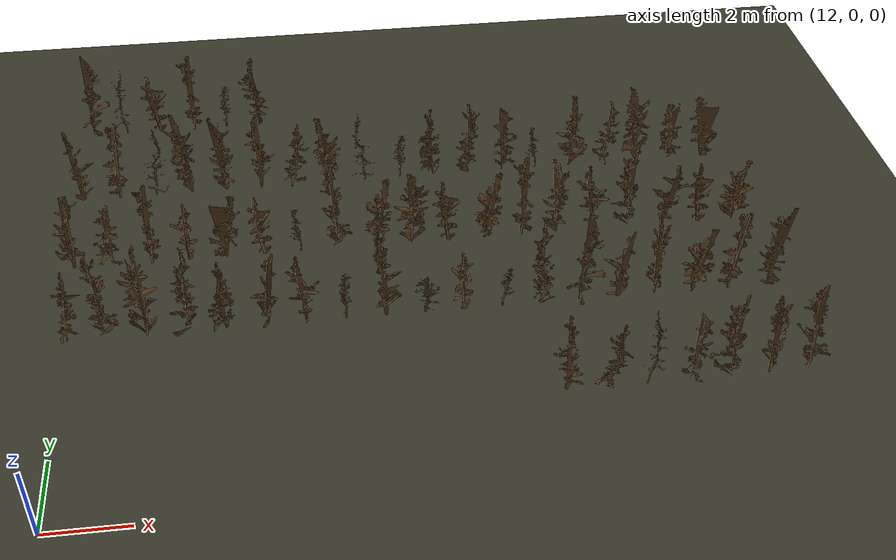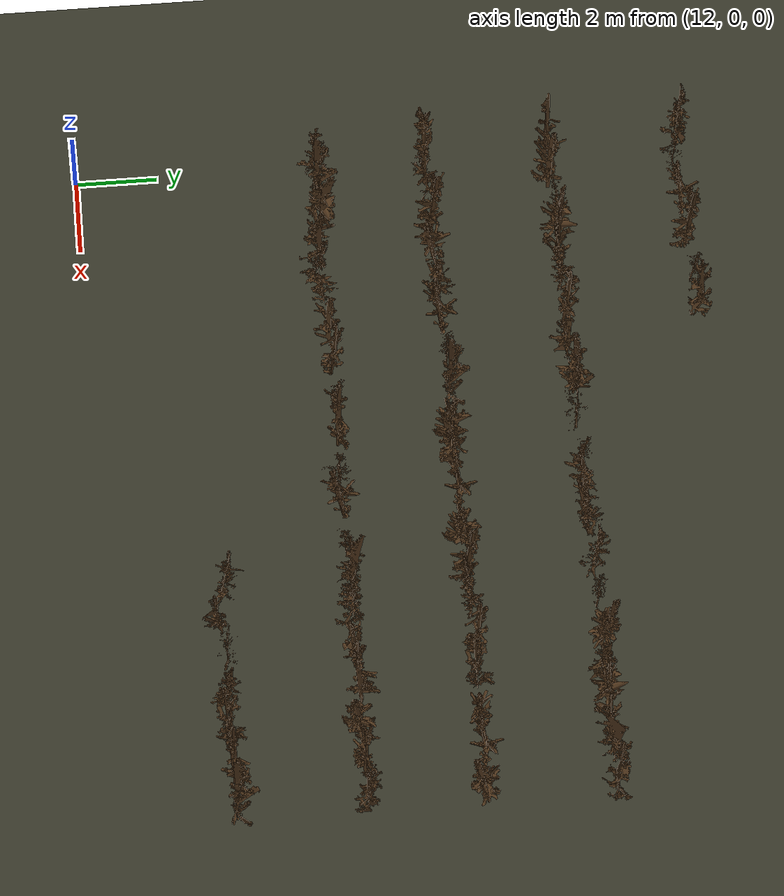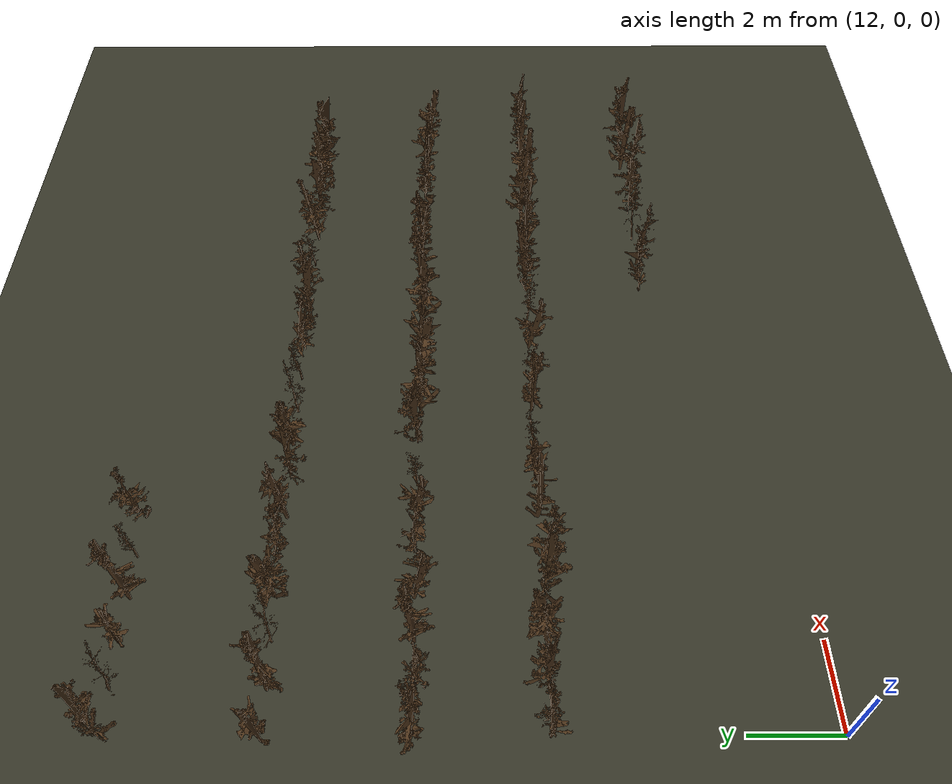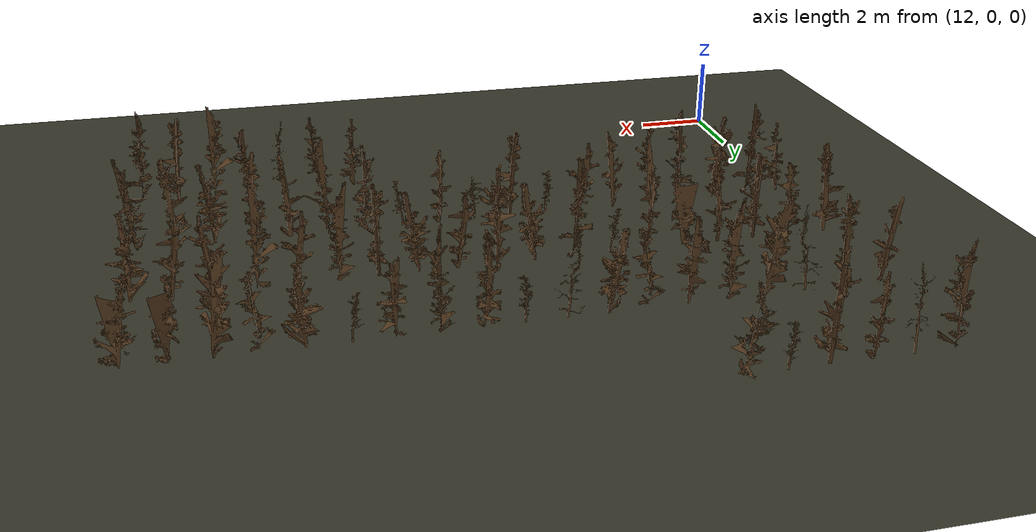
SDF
<sdf version="1.9">
 <world name="orchard_dormant_world">
  <model name="ground_plane">
   <static>true</static>
   <link name="link">
    <collision name="collision">
     <geometry><plane><normal>0 0 1</normal><size>500 500</size></plane></geometry>
    </collision>
    <visual name="visual">
     <geometry><plane><normal>0 0 1</normal><size>500 500</size></plane></geometry>
     <material><ambient>0.2 0.2 0.15 1</ambient><diffuse>0.2 0.2 0.15 1</diffuse></material>
    </visual>
   </link>
  </model>
  <model name="tree122">
   <static>true</static>
   <pose>17.000 14.900 -0.1 0 0 4.695</pose>
   <link name="link">
    <collision name="collision">
     <geometry>
      <mesh>
       <uri>file:///home/administrator/ros2/orchard_navigation_rl_ws/src/orchard_worlds/models/orchard_model/tree10_collision.stl</uri>
      </mesh>
     </geometry>
    </collision>
    <visual name="visual">
     <geometry>
      <mesh>
       <uri>file:///home/administrator/ros2/orchard_navigation_rl_ws/src/orchard_worlds/models/orchard_model/tree10.stl</uri>
      </mesh>
     </geometry>
     <material><ambient>0.3 0.2 0.1 1</ambient><diffuse>0.3 0.2 0.1 1</diffuse></material>
    </visual>
   </link>
  </model>
  <model name="tree123">
   <static>true</static>
   <pose>16.000 14.900 -0.1 0 0 4.043</pose>
   <link name="link">
    <collision name="collision">
     <geometry>
      <mesh>
       <uri>file:///home/administrator/ros2/orchard_navigation_rl_ws/src/orchard_worlds/models/orchard_model/tree4_collision.stl</uri>
      </mesh>
     </geometry>
    </collision>
    <visual name="visual">
     <geometry>
      <mesh>
       <uri>file:///home/administrator/ros2/orchard_navigation_rl_ws/src/orchard_worlds/models/orchard_model/tree4.stl</uri>
      </mesh>
     </geometry>
     <material><ambient>0.3 0.2 0.1 1</ambient><diffuse>0.3 0.2 0.1 1</diffuse></material>
    </visual>
   </link>
  </model>
  <model name="tree124">
   <static>true</static>
   <pose>15.000 14.900 -0.1 0 0 3.682</pose>
   <link name="link">
    <collision name="collision">
     <geometry>
      <mesh>
       <uri>file:///home/administrator/ros2/orchard_navigation_rl_ws/src/orchard_worlds/models/orchard_model/tree6_collision.stl</uri>
      </mesh>
     </geometry>
    </collision>
    <visual name="visual">
     <geometry>
      <mesh>
       <uri>file:///home/administrator/ros2/orchard_navigation_rl_ws/src/orchard_worlds/models/orchard_model/tree6.stl</uri>
      </mesh>
     </geometry>
     <material><ambient>0.3 0.2 0.1 1</ambient><diffuse>0.3 0.2 0.1 1</diffuse></material>
    </visual>
   </link>
  </model>
  <model name="tree125">
   <static>true</static>
   <pose>14.000 14.900 -0.1 0 0 6.033</pose>
   <link name="link">
    <collision name="collision">
     <geometry>
      <mesh>
       <uri>file:///home/administrator/ros2/orchard_navigation_rl_ws/src/orchard_worlds/models/orchard_model/tree8_collision.stl</uri>
      </mesh>
     </geometry>
    </collision>
    <visual name="visual">
     <geometry>
      <mesh>
       <uri>file:///home/administrator/ros2/orchard_navigation_rl_ws/src/orchard_worlds/models/orchard_model/tree8.stl</uri>
      </mesh>
     </geometry>
     <material><ambient>0.3 0.2 0.1 1</ambient><diffuse>0.3 0.2 0.1 1</diffuse></material>
    </visual>
   </link>
  </model>
  <model name="tree126">
   <static>true</static>
   <pose>13.000 14.900 -0.1 0 0 1.878</pose>
   <link name="link">
    <collision name="collision">
     <geometry>
      <mesh>
       <uri>file:///home/administrator/ros2/orchard_navigation_rl_ws/src/orchard_worlds/models/orchard_model/tree16_collision.stl</uri>
      </mesh>
     </geometry>
    </collision>
    <visual name="visual">
     <geometry>
      <mesh>
       <uri>file:///home/administrator/ros2/orchard_navigation_rl_ws/src/orchard_worlds/models/orchard_model/tree16.stl</uri>
      </mesh>
     </geometry>
     <material><ambient>0.3 0.2 0.1 1</ambient><diffuse>0.3 0.2 0.1 1</diffuse></material>
    </visual>
   </link>
  </model>
  <model name="tree127">
   <static>true</static>
   <pose>12.000 14.900 -0.1 0 0 2.507</pose>
   <link name="link">
    <collision name="collision">
     <geometry>
      <mesh>
       <uri>file:///home/administrator/ros2/orchard_navigation_rl_ws/src/orchard_worlds/models/orchard_model/tree3_collision.stl</uri>
      </mesh>
     </geometry>
    </collision>
    <visual name="visual">
     <geometry>
      <mesh>
       <uri>file:///home/administrator/ros2/orchard_navigation_rl_ws/src/orchard_worlds/models/orchard_model/tree3.stl</uri>
      </mesh>
     </geometry>
     <material><ambient>0.3 0.2 0.1 1</ambient><diffuse>0.3 0.2 0.1 1</diffuse></material>
    </visual>
   </link>
  </model>
  <model name="tree143">
   <static>true</static>
   <pose>30.000 11.700 -0.1 0 0 5.397</pose>
   <link name="link">
    <collision name="collision">
     <geometry>
      <mesh>
       <uri>file:///home/administrator/ros2/orchard_navigation_rl_ws/src/orchard_worlds/models/orchard_model/tree11_collision.stl</uri>
      </mesh>
     </geometry>
    </collision>
    <visual name="visual">
     <geometry>
      <mesh>
       <uri>file:///home/administrator/ros2/orchard_navigation_rl_ws/src/orchard_worlds/models/orchard_model/tree11.stl</uri>
      </mesh>
     </geometry>
     <material><ambient>0.3 0.2 0.1 1</ambient><diffuse>0.3 0.2 0.1 1</diffuse></material>
    </visual>
   </link>
  </model>
  <model name="tree144">
   <static>true</static>
   <pose>29.000 11.700 -0.1 0 0 0.231</pose>
   <link name="link">
    <collision name="collision">
     <geometry>
      <mesh>
       <uri>file:///home/administrator/ros2/orchard_navigation_rl_ws/src/orchard_worlds/models/orchard_model/tree11_collision.stl</uri>
      </mesh>
     </geometry>
    </collision>
    <visual name="visual">
     <geometry>
      <mesh>
       <uri>file:///home/administrator/ros2/orchard_navigation_rl_ws/src/orchard_worlds/models/orchard_model/tree11.stl</uri>
      </mesh>
     </geometry>
     <material><ambient>0.3 0.2 0.1 1</ambient><diffuse>0.3 0.2 0.1 1</diffuse></material>
    </visual>
   </link>
  </model>
  <model name="tree145">
   <static>true</static>
   <pose>28.000 11.700 -0.1 0 0 5.846</pose>
   <link name="link">
    <collision name="collision">
     <geometry>
      <mesh>
       <uri>file:///home/administrator/ros2/orchard_navigation_rl_ws/src/orchard_worlds/models/orchard_model/tree7_collision.stl</uri>
      </mesh>
     </geometry>
    </collision>
    <visual name="visual">
     <geometry>
      <mesh>
       <uri>file:///home/administrator/ros2/orchard_navigation_rl_ws/src/orchard_worlds/models/orchard_model/tree7.stl</uri>
      </mesh>
     </geometry>
     <material><ambient>0.3 0.2 0.1 1</ambient><diffuse>0.3 0.2 0.1 1</diffuse></material>
    </visual>
   </link>
  </model>
  <model name="tree146">
   <static>true</static>
   <pose>27.000 11.700 -0.1 0 0 1.678</pose>
   <link name="link">
    <collision name="collision">
     <geometry>
      <mesh>
       <uri>file:///home/administrator/ros2/orchard_navigation_rl_ws/src/orchard_worlds/models/orchard_model/tree1_collision.stl</uri>
      </mesh>
     </geometry>
    </collision>
    <visual name="visual">
     <geometry>
      <mesh>
       <uri>file:///home/administrator/ros2/orchard_navigation_rl_ws/src/orchard_worlds/models/orchard_model/tree1.stl</uri>
      </mesh>
     </geometry>
     <material><ambient>0.3 0.2 0.1 1</ambient><diffuse>0.3 0.2 0.1 1</diffuse></material>
    </visual>
   </link>
  </model>
  <model name="tree147">
   <static>true</static>
   <pose>26.000 11.700 -0.1 0 0 3.928</pose>
   <link name="link">
    <collision name="collision">
     <geometry>
      <mesh>
       <uri>file:///home/administrator/ros2/orchard_navigation_rl_ws/src/orchard_worlds/models/orchard_model/tree12_collision.stl</uri>
      </mesh>
     </geometry>
    </collision>
    <visual name="visual">
     <geometry>
      <mesh>
       <uri>file:///home/administrator/ros2/orchard_navigation_rl_ws/src/orchard_worlds/models/orchard_model/tree12.stl</uri>
      </mesh>
     </geometry>
     <material><ambient>0.3 0.2 0.1 1</ambient><diffuse>0.3 0.2 0.1 1</diffuse></material>
    </visual>
   </link>
  </model>
  <model name="tree148">
   <static>true</static>
   <pose>25.000 11.700 -0.1 0 0 5.270</pose>
   <link name="link">
    <collision name="collision">
     <geometry>
      <mesh>
       <uri>file:///home/administrator/ros2/orchard_navigation_rl_ws/src/orchard_worlds/models/orchard_model/tree4_collision.stl</uri>
      </mesh>
     </geometry>
    </collision>
    <visual name="visual">
     <geometry>
      <mesh>
       <uri>file:///home/administrator/ros2/orchard_navigation_rl_ws/src/orchard_worlds/models/orchard_model/tree4.stl</uri>
      </mesh>
     </geometry>
     <material><ambient>0.3 0.2 0.1 1</ambient><diffuse>0.3 0.2 0.1 1</diffuse></material>
    </visual>
   </link>
  </model>
  <model name="tree149">
   <static>true</static>
   <pose>24.000 11.700 -0.1 0 0 3.241</pose>
   <link name="link">
    <collision name="collision">
     <geometry>
      <mesh>
       <uri>file:///home/administrator/ros2/orchard_navigation_rl_ws/src/orchard_worlds/models/orchard_model/tree1_collision.stl</uri>
      </mesh>
     </geometry>
    </collision>
    <visual name="visual">
     <geometry>
      <mesh>
       <uri>file:///home/administrator/ros2/orchard_navigation_rl_ws/src/orchard_worlds/models/orchard_model/tree1.stl</uri>
      </mesh>
     </geometry>
     <material><ambient>0.3 0.2 0.1 1</ambient><diffuse>0.3 0.2 0.1 1</diffuse></material>
    </visual>
   </link>
  </model>
  <model name="tree150">
   <static>true</static>
   <pose>23.000 11.700 -0.1 0 0 0.190</pose>
   <link name="link">
    <collision name="collision">
     <geometry>
      <mesh>
       <uri>file:///home/administrator/ros2/orchard_navigation_rl_ws/src/orchard_worlds/models/orchard_model/tree5_collision.stl</uri>
      </mesh>
     </geometry>
    </collision>
    <visual name="visual">
     <geometry>
      <mesh>
       <uri>file:///home/administrator/ros2/orchard_navigation_rl_ws/src/orchard_worlds/models/orchard_model/tree5.stl</uri>
      </mesh>
     </geometry>
     <material><ambient>0.3 0.2 0.1 1</ambient><diffuse>0.3 0.2 0.1 1</diffuse></material>
    </visual>
   </link>
  </model>
  <model name="tree151">
   <static>true</static>
   <pose>22.000 11.700 -0.1 0 0 6.062</pose>
   <link name="link">
    <collision name="collision">
     <geometry>
      <mesh>
       <uri>file:///home/administrator/ros2/orchard_navigation_rl_ws/src/orchard_worlds/models/orchard_model/tree10_collision.stl</uri>
      </mesh>
     </geometry>
    </collision>
    <visual name="visual">
     <geometry>
      <mesh>
       <uri>file:///home/administrator/ros2/orchard_navigation_rl_ws/src/orchard_worlds/models/orchard_model/tree10.stl</uri>
      </mesh>
     </geometry>
     <material><ambient>0.3 0.2 0.1 1</ambient><diffuse>0.3 0.2 0.1 1</diffuse></material>
    </visual>
   </link>
  </model>
  <model name="tree152">
   <static>true</static>
   <pose>21.000 11.700 -0.1 0 0 3.945</pose>
   <link name="link">
    <collision name="collision">
     <geometry>
      <mesh>
       <uri>file:///home/administrator/ros2/orchard_navigation_rl_ws/src/orchard_worlds/models/orchard_model/tree4_collision.stl</uri>
      </mesh>
     </geometry>
    </collision>
    <visual name="visual">
     <geometry>
      <mesh>
       <uri>file:///home/administrator/ros2/orchard_navigation_rl_ws/src/orchard_worlds/models/orchard_model/tree4.stl</uri>
      </mesh>
     </geometry>
     <material><ambient>0.3 0.2 0.1 1</ambient><diffuse>0.3 0.2 0.1 1</diffuse></material>
    </visual>
   </link>
  </model>
  <model name="tree153">
   <static>true</static>
   <pose>20.000 11.700 -0.1 0 0 5.059</pose>
   <link name="link">
    <collision name="collision">
     <geometry>
      <mesh>
       <uri>file:///home/administrator/ros2/orchard_navigation_rl_ws/src/orchard_worlds/models/orchard_model/tree9_collision.stl</uri>
      </mesh>
     </geometry>
    </collision>
    <visual name="visual">
     <geometry>
      <mesh>
       <uri>file:///home/administrator/ros2/orchard_navigation_rl_ws/src/orchard_worlds/models/orchard_model/tree9.stl</uri>
      </mesh>
     </geometry>
     <material><ambient>0.3 0.2 0.1 1</ambient><diffuse>0.3 0.2 0.1 1</diffuse></material>
    </visual>
   </link>
  </model>
  <model name="tree154">
   <static>true</static>
   <pose>19.000 11.700 -0.1 0 0 5.602</pose>
   <link name="link">
    <collision name="collision">
     <geometry>
      <mesh>
       <uri>file:///home/administrator/ros2/orchard_navigation_rl_ws/src/orchard_worlds/models/orchard_model/tree12_collision.stl</uri>
      </mesh>
     </geometry>
    </collision>
    <visual name="visual">
     <geometry>
      <mesh>
       <uri>file:///home/administrator/ros2/orchard_navigation_rl_ws/src/orchard_worlds/models/orchard_model/tree12.stl</uri>
      </mesh>
     </geometry>
     <material><ambient>0.3 0.2 0.1 1</ambient><diffuse>0.3 0.2 0.1 1</diffuse></material>
    </visual>
   </link>
  </model>
  <model name="tree155">
   <static>true</static>
   <pose>18.000 11.700 -0.1 0 0 1.183</pose>
   <link name="link">
    <collision name="collision">
     <geometry>
      <mesh>
       <uri>file:///home/administrator/ros2/orchard_navigation_rl_ws/src/orchard_worlds/models/orchard_model/tree1_collision.stl</uri>
      </mesh>
     </geometry>
    </collision>
    <visual name="visual">
     <geometry>
      <mesh>
       <uri>file:///home/administrator/ros2/orchard_navigation_rl_ws/src/orchard_worlds/models/orchard_model/tree1.stl</uri>
      </mesh>
     </geometry>
     <material><ambient>0.3 0.2 0.1 1</ambient><diffuse>0.3 0.2 0.1 1</diffuse></material>
    </visual>
   </link>
  </model>
  <model name="tree156">
   <static>true</static>
   <pose>17.000 11.700 -0.1 0 0 4.761</pose>
   <link name="link">
    <collision name="collision">
     <geometry>
      <mesh>
       <uri>file:///home/administrator/ros2/orchard_navigation_rl_ws/src/orchard_worlds/models/orchard_model/tree15_collision.stl</uri>
      </mesh>
     </geometry>
    </collision>
    <visual name="visual">
     <geometry>
      <mesh>
       <uri>file:///home/administrator/ros2/orchard_navigation_rl_ws/src/orchard_worlds/models/orchard_model/tree15.stl</uri>
      </mesh>
     </geometry>
     <material><ambient>0.3 0.2 0.1 1</ambient><diffuse>0.3 0.2 0.1 1</diffuse></material>
    </visual>
   </link>
  </model>
  <model name="tree157">
   <static>true</static>
   <pose>16.000 11.700 -0.1 0 0 5.682</pose>
   <link name="link">
    <collision name="collision">
     <geometry>
      <mesh>
       <uri>file:///home/administrator/ros2/orchard_navigation_rl_ws/src/orchard_worlds/models/orchard_model/tree5_collision.stl</uri>
      </mesh>
     </geometry>
    </collision>
    <visual name="visual">
     <geometry>
      <mesh>
       <uri>file:///home/administrator/ros2/orchard_navigation_rl_ws/src/orchard_worlds/models/orchard_model/tree5.stl</uri>
      </mesh>
     </geometry>
     <material><ambient>0.3 0.2 0.1 1</ambient><diffuse>0.3 0.2 0.1 1</diffuse></material>
    </visual>
   </link>
  </model>
  <model name="tree158">
   <static>true</static>
   <pose>15.000 11.700 -0.1 0 0 5.383</pose>
   <link name="link">
    <collision name="collision">
     <geometry>
      <mesh>
       <uri>file:///home/administrator/ros2/orchard_navigation_rl_ws/src/orchard_worlds/models/orchard_model/tree7_collision.stl</uri>
      </mesh>
     </geometry>
    </collision>
    <visual name="visual">
     <geometry>
      <mesh>
       <uri>file:///home/administrator/ros2/orchard_navigation_rl_ws/src/orchard_worlds/models/orchard_model/tree7.stl</uri>
      </mesh>
     </geometry>
     <material><ambient>0.3 0.2 0.1 1</ambient><diffuse>0.3 0.2 0.1 1</diffuse></material>
    </visual>
   </link>
  </model>
  <model name="tree159">
   <static>true</static>
   <pose>14.000 11.700 -0.1 0 0 1.995</pose>
   <link name="link">
    <collision name="collision">
     <geometry>
      <mesh>
       <uri>file:///home/administrator/ros2/orchard_navigation_rl_ws/src/orchard_worlds/models/orchard_model/tree9_collision.stl</uri>
      </mesh>
     </geometry>
    </collision>
    <visual name="visual">
     <geometry>
      <mesh>
       <uri>file:///home/administrator/ros2/orchard_navigation_rl_ws/src/orchard_worlds/models/orchard_model/tree9.stl</uri>
      </mesh>
     </geometry>
     <material><ambient>0.3 0.2 0.1 1</ambient><diffuse>0.3 0.2 0.1 1</diffuse></material>
    </visual>
   </link>
  </model>
  <model name="tree160">
   <static>true</static>
   <pose>13.000 11.700 -0.1 0 0 2.729</pose>
   <link name="link">
    <collision name="collision">
     <geometry>
      <mesh>
       <uri>file:///home/administrator/ros2/orchard_navigation_rl_ws/src/orchard_worlds/models/orchard_model/tree6_collision.stl</uri>
      </mesh>
     </geometry>
    </collision>
    <visual name="visual">
     <geometry>
      <mesh>
       <uri>file:///home/administrator/ros2/orchard_navigation_rl_ws/src/orchard_worlds/models/orchard_model/tree6.stl</uri>
      </mesh>
     </geometry>
     <material><ambient>0.3 0.2 0.1 1</ambient><diffuse>0.3 0.2 0.1 1</diffuse></material>
    </visual>
   </link>
  </model>
  <model name="tree161">
   <static>true</static>
   <pose>12.000 11.700 -0.1 0 0 5.230</pose>
   <link name="link">
    <collision name="collision">
     <geometry>
      <mesh>
       <uri>file:///home/administrator/ros2/orchard_navigation_rl_ws/src/orchard_worlds/models/orchard_model/tree13_collision.stl</uri>
      </mesh>
     </geometry>
    </collision>
    <visual name="visual">
     <geometry>
      <mesh>
       <uri>file:///home/administrator/ros2/orchard_navigation_rl_ws/src/orchard_worlds/models/orchard_model/tree13.stl</uri>
      </mesh>
     </geometry>
     <material><ambient>0.3 0.2 0.1 1</ambient><diffuse>0.3 0.2 0.1 1</diffuse></material>
    </visual>
   </link>
  </model>
  <model name="tree177">
   <static>true</static>
   <pose>30.000 8.700 -0.1 0 0 1.158</pose>
   <link name="link">
    <collision name="collision">
     <geometry>
      <mesh>
       <uri>file:///home/administrator/ros2/orchard_navigation_rl_ws/src/orchard_worlds/models/orchard_model/tree12_collision.stl</uri>
      </mesh>
     </geometry>
    </collision>
    <visual name="visual">
     <geometry>
      <mesh>
       <uri>file:///home/administrator/ros2/orchard_navigation_rl_ws/src/orchard_worlds/models/orchard_model/tree12.stl</uri>
      </mesh>
     </geometry>
     <material><ambient>0.3 0.2 0.1 1</ambient><diffuse>0.3 0.2 0.1 1</diffuse></material>
    </visual>
   </link>
  </model>
  <model name="tree178">
   <static>true</static>
   <pose>29.000 8.700 -0.1 0 0 5.805</pose>
   <link name="link">
    <collision name="collision">
     <geometry>
      <mesh>
       <uri>file:///home/administrator/ros2/orchard_navigation_rl_ws/src/orchard_worlds/models/orchard_model/tree8_collision.stl</uri>
      </mesh>
     </geometry>
    </collision>
    <visual name="visual">
     <geometry>
      <mesh>
       <uri>file:///home/administrator/ros2/orchard_navigation_rl_ws/src/orchard_worlds/models/orchard_model/tree8.stl</uri>
      </mesh>
     </geometry>
     <material><ambient>0.3 0.2 0.1 1</ambient><diffuse>0.3 0.2 0.1 1</diffuse></material>
    </visual>
   </link>
  </model>
  <model name="tree179">
   <static>true</static>
   <pose>28.000 8.700 -0.1 0 0 1.707</pose>
   <link name="link">
    <collision name="collision">
     <geometry>
      <mesh>
       <uri>file:///home/administrator/ros2/orchard_navigation_rl_ws/src/orchard_worlds/models/orchard_model/tree8_collision.stl</uri>
      </mesh>
     </geometry>
    </collision>
    <visual name="visual">
     <geometry>
      <mesh>
       <uri>file:///home/administrator/ros2/orchard_navigation_rl_ws/src/orchard_worlds/models/orchard_model/tree8.stl</uri>
      </mesh>
     </geometry>
     <material><ambient>0.3 0.2 0.1 1</ambient><diffuse>0.3 0.2 0.1 1</diffuse></material>
    </visual>
   </link>
  </model>
  <model name="tree180">
   <static>true</static>
   <pose>27.000 8.700 -0.1 0 0 5.780</pose>
   <link name="link">
    <collision name="collision">
     <geometry>
      <mesh>
       <uri>file:///home/administrator/ros2/orchard_navigation_rl_ws/src/orchard_worlds/models/orchard_model/tree3_collision.stl</uri>
      </mesh>
     </geometry>
    </collision>
    <visual name="visual">
     <geometry>
      <mesh>
       <uri>file:///home/administrator/ros2/orchard_navigation_rl_ws/src/orchard_worlds/models/orchard_model/tree3.stl</uri>
      </mesh>
     </geometry>
     <material><ambient>0.3 0.2 0.1 1</ambient><diffuse>0.3 0.2 0.1 1</diffuse></material>
    </visual>
   </link>
  </model>
  <model name="tree181">
   <static>true</static>
   <pose>26.000 8.700 -0.1 0 0 4.679</pose>
   <link name="link">
    <collision name="collision">
     <geometry>
      <mesh>
       <uri>file:///home/administrator/ros2/orchard_navigation_rl_ws/src/orchard_worlds/models/orchard_model/tree8_collision.stl</uri>
      </mesh>
     </geometry>
    </collision>
    <visual name="visual">
     <geometry>
      <mesh>
       <uri>file:///home/administrator/ros2/orchard_navigation_rl_ws/src/orchard_worlds/models/orchard_model/tree8.stl</uri>
      </mesh>
     </geometry>
     <material><ambient>0.3 0.2 0.1 1</ambient><diffuse>0.3 0.2 0.1 1</diffuse></material>
    </visual>
   </link>
  </model>
  <model name="tree182">
   <static>true</static>
   <pose>25.000 8.700 -0.1 0 0 5.762</pose>
   <link name="link">
    <collision name="collision">
     <geometry>
      <mesh>
       <uri>file:///home/administrator/ros2/orchard_navigation_rl_ws/src/orchard_worlds/models/orchard_model/tree5_collision.stl</uri>
      </mesh>
     </geometry>
    </collision>
    <visual name="visual">
     <geometry>
      <mesh>
       <uri>file:///home/administrator/ros2/orchard_navigation_rl_ws/src/orchard_worlds/models/orchard_model/tree5.stl</uri>
      </mesh>
     </geometry>
     <material><ambient>0.3 0.2 0.1 1</ambient><diffuse>0.3 0.2 0.1 1</diffuse></material>
    </visual>
   </link>
  </model>
  <model name="tree183">
   <static>true</static>
   <pose>24.000 8.700 -0.1 0 0 3.532</pose>
   <link name="link">
    <collision name="collision">
     <geometry>
      <mesh>
       <uri>file:///home/administrator/ros2/orchard_navigation_rl_ws/src/orchard_worlds/models/orchard_model/tree6_collision.stl</uri>
      </mesh>
     </geometry>
    </collision>
    <visual name="visual">
     <geometry>
      <mesh>
       <uri>file:///home/administrator/ros2/orchard_navigation_rl_ws/src/orchard_worlds/models/orchard_model/tree6.stl</uri>
      </mesh>
     </geometry>
     <material><ambient>0.3 0.2 0.1 1</ambient><diffuse>0.3 0.2 0.1 1</diffuse></material>
    </visual>
   </link>
  </model>
  <model name="tree184">
   <static>true</static>
   <pose>23.000 8.700 -0.1 0 0 2.435</pose>
   <link name="link">
    <collision name="collision">
     <geometry>
      <mesh>
       <uri>file:///home/administrator/ros2/orchard_navigation_rl_ws/src/orchard_worlds/models/orchard_model/tree12_collision.stl</uri>
      </mesh>
     </geometry>
    </collision>
    <visual name="visual">
     <geometry>
      <mesh>
       <uri>file:///home/administrator/ros2/orchard_navigation_rl_ws/src/orchard_worlds/models/orchard_model/tree12.stl</uri>
      </mesh>
     </geometry>
     <material><ambient>0.3 0.2 0.1 1</ambient><diffuse>0.3 0.2 0.1 1</diffuse></material>
    </visual>
   </link>
  </model>
  <model name="tree185">
   <static>true</static>
   <pose>22.000 8.700 -0.1 0 0 5.769</pose>
   <link name="link">
    <collision name="collision">
     <geometry>
      <mesh>
       <uri>file:///home/administrator/ros2/orchard_navigation_rl_ws/src/orchard_worlds/models/orchard_model/tree8_collision.stl</uri>
      </mesh>
     </geometry>
    </collision>
    <visual name="visual">
     <geometry>
      <mesh>
       <uri>file:///home/administrator/ros2/orchard_navigation_rl_ws/src/orchard_worlds/models/orchard_model/tree8.stl</uri>
      </mesh>
     </geometry>
     <material><ambient>0.3 0.2 0.1 1</ambient><diffuse>0.3 0.2 0.1 1</diffuse></material>
    </visual>
   </link>
  </model>
  <model name="tree186">
   <static>true</static>
   <pose>21.000 8.700 -0.1 0 0 0.773</pose>
   <link name="link">
    <collision name="collision">
     <geometry>
      <mesh>
       <uri>file:///home/administrator/ros2/orchard_navigation_rl_ws/src/orchard_worlds/models/orchard_model/tree7_collision.stl</uri>
      </mesh>
     </geometry>
    </collision>
    <visual name="visual">
     <geometry>
      <mesh>
       <uri>file:///home/administrator/ros2/orchard_navigation_rl_ws/src/orchard_worlds/models/orchard_model/tree7.stl</uri>
      </mesh>
     </geometry>
     <material><ambient>0.3 0.2 0.1 1</ambient><diffuse>0.3 0.2 0.1 1</diffuse></material>
    </visual>
   </link>
  </model>
  <model name="tree187">
   <static>true</static>
   <pose>20.000 8.700 -0.1 0 0 2.683</pose>
   <link name="link">
    <collision name="collision">
     <geometry>
      <mesh>
       <uri>file:///home/administrator/ros2/orchard_navigation_rl_ws/src/orchard_worlds/models/orchard_model/tree12_collision.stl</uri>
      </mesh>
     </geometry>
    </collision>
    <visual name="visual">
     <geometry>
      <mesh>
       <uri>file:///home/administrator/ros2/orchard_navigation_rl_ws/src/orchard_worlds/models/orchard_model/tree12.stl</uri>
      </mesh>
     </geometry>
     <material><ambient>0.3 0.2 0.1 1</ambient><diffuse>0.3 0.2 0.1 1</diffuse></material>
    </visual>
   </link>
  </model>
  <model name="tree188">
   <static>true</static>
   <pose>19.000 8.700 -0.1 0 0 4.428</pose>
   <link name="link">
    <collision name="collision">
     <geometry>
      <mesh>
       <uri>file:///home/administrator/ros2/orchard_navigation_rl_ws/src/orchard_worlds/models/orchard_model/tree3_collision.stl</uri>
      </mesh>
     </geometry>
    </collision>
    <visual name="visual">
     <geometry>
      <mesh>
       <uri>file:///home/administrator/ros2/orchard_navigation_rl_ws/src/orchard_worlds/models/orchard_model/tree3.stl</uri>
      </mesh>
     </geometry>
     <material><ambient>0.3 0.2 0.1 1</ambient><diffuse>0.3 0.2 0.1 1</diffuse></material>
    </visual>
   </link>
  </model>
  <model name="tree189">
   <static>true</static>
   <pose>18.000 8.700 -0.1 0 0 5.348</pose>
   <link name="link">
    <collision name="collision">
     <geometry>
      <mesh>
       <uri>file:///home/administrator/ros2/orchard_navigation_rl_ws/src/orchard_worlds/models/orchard_model/tree4_collision.stl</uri>
      </mesh>
     </geometry>
    </collision>
    <visual name="visual">
     <geometry>
      <mesh>
       <uri>file:///home/administrator/ros2/orchard_navigation_rl_ws/src/orchard_worlds/models/orchard_model/tree4.stl</uri>
      </mesh>
     </geometry>
     <material><ambient>0.3 0.2 0.1 1</ambient><diffuse>0.3 0.2 0.1 1</diffuse></material>
    </visual>
   </link>
  </model>
  <model name="tree190">
   <static>true</static>
   <pose>17.000 8.700 -0.1 0 0 6.217</pose>
   <link name="link">
    <collision name="collision">
     <geometry>
      <mesh>
       <uri>file:///home/administrator/ros2/orchard_navigation_rl_ws/src/orchard_worlds/models/orchard_model/tree8_collision.stl</uri>
      </mesh>
     </geometry>
    </collision>
    <visual name="visual">
     <geometry>
      <mesh>
       <uri>file:///home/administrator/ros2/orchard_navigation_rl_ws/src/orchard_worlds/models/orchard_model/tree8.stl</uri>
      </mesh>
     </geometry>
     <material><ambient>0.3 0.2 0.1 1</ambient><diffuse>0.3 0.2 0.1 1</diffuse></material>
    </visual>
   </link>
  </model>
  <model name="tree191">
   <static>true</static>
   <pose>16.000 8.700 -0.1 0 0 2.604</pose>
   <link name="link">
    <collision name="collision">
     <geometry>
      <mesh>
       <uri>file:///home/administrator/ros2/orchard_navigation_rl_ws/src/orchard_worlds/models/orchard_model/tree11_collision.stl</uri>
      </mesh>
     </geometry>
    </collision>
    <visual name="visual">
     <geometry>
      <mesh>
       <uri>file:///home/administrator/ros2/orchard_navigation_rl_ws/src/orchard_worlds/models/orchard_model/tree11.stl</uri>
      </mesh>
     </geometry>
     <material><ambient>0.3 0.2 0.1 1</ambient><diffuse>0.3 0.2 0.1 1</diffuse></material>
    </visual>
   </link>
  </model>
  <model name="tree192">
   <static>true</static>
   <pose>15.000 8.700 -0.1 0 0 0.799</pose>
   <link name="link">
    <collision name="collision">
     <geometry>
      <mesh>
       <uri>file:///home/administrator/ros2/orchard_navigation_rl_ws/src/orchard_worlds/models/orchard_model/tree8_collision.stl</uri>
      </mesh>
     </geometry>
    </collision>
    <visual name="visual">
     <geometry>
      <mesh>
       <uri>file:///home/administrator/ros2/orchard_navigation_rl_ws/src/orchard_worlds/models/orchard_model/tree8.stl</uri>
      </mesh>
     </geometry>
     <material><ambient>0.3 0.2 0.1 1</ambient><diffuse>0.3 0.2 0.1 1</diffuse></material>
    </visual>
   </link>
  </model>
  <model name="tree193">
   <static>true</static>
   <pose>14.000 8.700 -0.1 0 0 3.497</pose>
   <link name="link">
    <collision name="collision">
     <geometry>
      <mesh>
       <uri>file:///home/administrator/ros2/orchard_navigation_rl_ws/src/orchard_worlds/models/orchard_model/tree6_collision.stl</uri>
      </mesh>
     </geometry>
    </collision>
    <visual name="visual">
     <geometry>
      <mesh>
       <uri>file:///home/administrator/ros2/orchard_navigation_rl_ws/src/orchard_worlds/models/orchard_model/tree6.stl</uri>
      </mesh>
     </geometry>
     <material><ambient>0.3 0.2 0.1 1</ambient><diffuse>0.3 0.2 0.1 1</diffuse></material>
    </visual>
   </link>
  </model>
  <model name="tree194">
   <static>true</static>
   <pose>13.000 8.700 -0.1 0 0 0.454</pose>
   <link name="link">
    <collision name="collision">
     <geometry>
      <mesh>
       <uri>file:///home/administrator/ros2/orchard_navigation_rl_ws/src/orchard_worlds/models/orchard_model/tree1_collision.stl</uri>
      </mesh>
     </geometry>
    </collision>
    <visual name="visual">
     <geometry>
      <mesh>
       <uri>file:///home/administrator/ros2/orchard_navigation_rl_ws/src/orchard_worlds/models/orchard_model/tree1.stl</uri>
      </mesh>
     </geometry>
     <material><ambient>0.3 0.2 0.1 1</ambient><diffuse>0.3 0.2 0.1 1</diffuse></material>
    </visual>
   </link>
  </model>
  <model name="tree195">
   <static>true</static>
   <pose>12.000 8.700 -0.1 0 0 1.326</pose>
   <link name="link">
    <collision name="collision">
     <geometry>
      <mesh>
       <uri>file:///home/administrator/ros2/orchard_navigation_rl_ws/src/orchard_worlds/models/orchard_model/tree6_collision.stl</uri>
      </mesh>
     </geometry>
    </collision>
    <visual name="visual">
     <geometry>
      <mesh>
       <uri>file:///home/administrator/ros2/orchard_navigation_rl_ws/src/orchard_worlds/models/orchard_model/tree6.stl</uri>
      </mesh>
     </geometry>
     <material><ambient>0.3 0.2 0.1 1</ambient><diffuse>0.3 0.2 0.1 1</diffuse></material>
    </visual>
   </link>
  </model>
  <model name="tree208">
   <static>true</static>
   <pose>30.000 5.900 -0.1 0 0 1.769</pose>
   <link name="link">
    <collision name="collision">
     <geometry>
      <mesh>
       <uri>file:///home/administrator/ros2/orchard_navigation_rl_ws/src/orchard_worlds/models/orchard_model/tree5_collision.stl</uri>
      </mesh>
     </geometry>
    </collision>
    <visual name="visual">
     <geometry>
      <mesh>
       <uri>file:///home/administrator/ros2/orchard_navigation_rl_ws/src/orchard_worlds/models/orchard_model/tree5.stl</uri>
      </mesh>
     </geometry>
     <material><ambient>0.3 0.2 0.1 1</ambient><diffuse>0.3 0.2 0.1 1</diffuse></material>
    </visual>
   </link>
  </model>
  <model name="tree209">
   <static>true</static>
   <pose>29.000 5.900 -0.1 0 0 2.146</pose>
   <link name="link">
    <collision name="collision">
     <geometry>
      <mesh>
       <uri>file:///home/administrator/ros2/orchard_navigation_rl_ws/src/orchard_worlds/models/orchard_model/tree6_collision.stl</uri>
      </mesh>
     </geometry>
    </collision>
    <visual name="visual">
     <geometry>
      <mesh>
       <uri>file:///home/administrator/ros2/orchard_navigation_rl_ws/src/orchard_worlds/models/orchard_model/tree6.stl</uri>
      </mesh>
     </geometry>
     <material><ambient>0.3 0.2 0.1 1</ambient><diffuse>0.3 0.2 0.1 1</diffuse></material>
    </visual>
   </link>
  </model>
  <model name="tree210">
   <static>true</static>
   <pose>28.000 5.900 -0.1 0 0 1.936</pose>
   <link name="link">
    <collision name="collision">
     <geometry>
      <mesh>
       <uri>file:///home/administrator/ros2/orchard_navigation_rl_ws/src/orchard_worlds/models/orchard_model/tree12_collision.stl</uri>
      </mesh>
     </geometry>
    </collision>
    <visual name="visual">
     <geometry>
      <mesh>
       <uri>file:///home/administrator/ros2/orchard_navigation_rl_ws/src/orchard_worlds/models/orchard_model/tree12.stl</uri>
      </mesh>
     </geometry>
     <material><ambient>0.3 0.2 0.1 1</ambient><diffuse>0.3 0.2 0.1 1</diffuse></material>
    </visual>
   </link>
  </model>
  <model name="tree211">
   <static>true</static>
   <pose>27.000 5.900 -0.1 0 0 6.083</pose>
   <link name="link">
    <collision name="collision">
     <geometry>
      <mesh>
       <uri>file:///home/administrator/ros2/orchard_navigation_rl_ws/src/orchard_worlds/models/orchard_model/tree6_collision.stl</uri>
      </mesh>
     </geometry>
    </collision>
    <visual name="visual">
     <geometry>
      <mesh>
       <uri>file:///home/administrator/ros2/orchard_navigation_rl_ws/src/orchard_worlds/models/orchard_model/tree6.stl</uri>
      </mesh>
     </geometry>
     <material><ambient>0.3 0.2 0.1 1</ambient><diffuse>0.3 0.2 0.1 1</diffuse></material>
    </visual>
   </link>
  </model>
  <model name="tree212">
   <static>true</static>
   <pose>26.000 5.900 -0.1 0 0 1.570</pose>
   <link name="link">
    <collision name="collision">
     <geometry>
      <mesh>
       <uri>file:///home/administrator/ros2/orchard_navigation_rl_ws/src/orchard_worlds/models/orchard_model/tree13_collision.stl</uri>
      </mesh>
     </geometry>
    </collision>
    <visual name="visual">
     <geometry>
      <mesh>
       <uri>file:///home/administrator/ros2/orchard_navigation_rl_ws/src/orchard_worlds/models/orchard_model/tree13.stl</uri>
      </mesh>
     </geometry>
     <material><ambient>0.3 0.2 0.1 1</ambient><diffuse>0.3 0.2 0.1 1</diffuse></material>
    </visual>
   </link>
  </model>
  <model name="tree213">
   <static>true</static>
   <pose>25.000 5.900 -0.1 0 0 1.809</pose>
   <link name="link">
    <collision name="collision">
     <geometry>
      <mesh>
       <uri>file:///home/administrator/ros2/orchard_navigation_rl_ws/src/orchard_worlds/models/orchard_model/tree3_collision.stl</uri>
      </mesh>
     </geometry>
    </collision>
    <visual name="visual">
     <geometry>
      <mesh>
       <uri>file:///home/administrator/ros2/orchard_navigation_rl_ws/src/orchard_worlds/models/orchard_model/tree3.stl</uri>
      </mesh>
     </geometry>
     <material><ambient>0.3 0.2 0.1 1</ambient><diffuse>0.3 0.2 0.1 1</diffuse></material>
    </visual>
   </link>
  </model>
  <model name="tree214">
   <static>true</static>
   <pose>24.000 5.900 -0.1 0 0 3.455</pose>
   <link name="link">
    <collision name="collision">
     <geometry>
      <mesh>
       <uri>file:///home/administrator/ros2/orchard_navigation_rl_ws/src/orchard_worlds/models/orchard_model/tree5_collision.stl</uri>
      </mesh>
     </geometry>
    </collision>
    <visual name="visual">
     <geometry>
      <mesh>
       <uri>file:///home/administrator/ros2/orchard_navigation_rl_ws/src/orchard_worlds/models/orchard_model/tree5.stl</uri>
      </mesh>
     </geometry>
     <material><ambient>0.3 0.2 0.1 1</ambient><diffuse>0.3 0.2 0.1 1</diffuse></material>
    </visual>
   </link>
  </model>
  <model name="tree215">
   <static>true</static>
   <pose>23.000 5.900 -0.1 0 0 2.368</pose>
   <link name="link">
    <collision name="collision">
     <geometry>
      <mesh>
       <uri>file:///home/administrator/ros2/orchard_navigation_rl_ws/src/orchard_worlds/models/orchard_model/tree4_collision.stl</uri>
      </mesh>
     </geometry>
    </collision>
    <visual name="visual">
     <geometry>
      <mesh>
       <uri>file:///home/administrator/ros2/orchard_navigation_rl_ws/src/orchard_worlds/models/orchard_model/tree4.stl</uri>
      </mesh>
     </geometry>
     <material><ambient>0.3 0.2 0.1 1</ambient><diffuse>0.3 0.2 0.1 1</diffuse></material>
    </visual>
   </link>
  </model>
  <model name="tree216">
   <static>true</static>
   <pose>22.000 5.900 -0.1 0 0 0.255</pose>
   <link name="link">
    <collision name="collision">
     <geometry>
      <mesh>
       <uri>file:///home/administrator/ros2/orchard_navigation_rl_ws/src/orchard_worlds/models/orchard_model/tree8_collision.stl</uri>
      </mesh>
     </geometry>
    </collision>
    <visual name="visual">
     <geometry>
      <mesh>
       <uri>file:///home/administrator/ros2/orchard_navigation_rl_ws/src/orchard_worlds/models/orchard_model/tree8.stl</uri>
      </mesh>
     </geometry>
     <material><ambient>0.3 0.2 0.1 1</ambient><diffuse>0.3 0.2 0.1 1</diffuse></material>
    </visual>
   </link>
  </model>
  <model name="tree217">
   <static>true</static>
   <pose>21.000 5.900 -0.1 0 0 3.836</pose>
   <link name="link">
    <collision name="collision">
     <geometry>
      <mesh>
       <uri>file:///home/administrator/ros2/orchard_navigation_rl_ws/src/orchard_worlds/models/orchard_model/tree14_collision.stl</uri>
      </mesh>
     </geometry>
    </collision>
    <visual name="visual">
     <geometry>
      <mesh>
       <uri>file:///home/administrator/ros2/orchard_navigation_rl_ws/src/orchard_worlds/models/orchard_model/tree14.stl</uri>
      </mesh>
     </geometry>
     <material><ambient>0.3 0.2 0.1 1</ambient><diffuse>0.3 0.2 0.1 1</diffuse></material>
    </visual>
   </link>
  </model>
  <model name="tree218">
   <static>true</static>
   <pose>20.000 5.900 -0.1 0 0 5.209</pose>
   <link name="link">
    <collision name="collision">
     <geometry>
      <mesh>
       <uri>file:///home/administrator/ros2/orchard_navigation_rl_ws/src/orchard_worlds/models/orchard_model/tree6_collision.stl</uri>
      </mesh>
     </geometry>
    </collision>
    <visual name="visual">
     <geometry>
      <mesh>
       <uri>file:///home/administrator/ros2/orchard_navigation_rl_ws/src/orchard_worlds/models/orchard_model/tree6.stl</uri>
      </mesh>
     </geometry>
     <material><ambient>0.3 0.2 0.1 1</ambient><diffuse>0.3 0.2 0.1 1</diffuse></material>
    </visual>
   </link>
  </model>
  <model name="tree219">
   <static>true</static>
   <pose>19.000 5.900 -0.1 0 0 4.343</pose>
   <link name="link">
    <collision name="collision">
     <geometry>
      <mesh>
       <uri>file:///home/administrator/ros2/orchard_navigation_rl_ws/src/orchard_worlds/models/orchard_model/tree4_collision.stl</uri>
      </mesh>
     </geometry>
    </collision>
    <visual name="visual">
     <geometry>
      <mesh>
       <uri>file:///home/administrator/ros2/orchard_navigation_rl_ws/src/orchard_worlds/models/orchard_model/tree4.stl</uri>
      </mesh>
     </geometry>
     <material><ambient>0.3 0.2 0.1 1</ambient><diffuse>0.3 0.2 0.1 1</diffuse></material>
    </visual>
   </link>
  </model>
  <model name="tree220">
   <static>true</static>
   <pose>18.000 5.900 -0.1 0 0 4.635</pose>
   <link name="link">
    <collision name="collision">
     <geometry>
      <mesh>
       <uri>file:///home/administrator/ros2/orchard_navigation_rl_ws/src/orchard_worlds/models/orchard_model/tree8_collision.stl</uri>
      </mesh>
     </geometry>
    </collision>
    <visual name="visual">
     <geometry>
      <mesh>
       <uri>file:///home/administrator/ros2/orchard_navigation_rl_ws/src/orchard_worlds/models/orchard_model/tree8.stl</uri>
      </mesh>
     </geometry>
     <material><ambient>0.3 0.2 0.1 1</ambient><diffuse>0.3 0.2 0.1 1</diffuse></material>
    </visual>
   </link>
  </model>
  <model name="tree221">
   <static>true</static>
   <pose>17.000 5.900 -0.1 0 0 2.536</pose>
   <link name="link">
    <collision name="collision">
     <geometry>
      <mesh>
       <uri>file:///home/administrator/ros2/orchard_navigation_rl_ws/src/orchard_worlds/models/orchard_model/tree13_collision.stl</uri>
      </mesh>
     </geometry>
    </collision>
    <visual name="visual">
     <geometry>
      <mesh>
       <uri>file:///home/administrator/ros2/orchard_navigation_rl_ws/src/orchard_worlds/models/orchard_model/tree13.stl</uri>
      </mesh>
     </geometry>
     <material><ambient>0.3 0.2 0.1 1</ambient><diffuse>0.3 0.2 0.1 1</diffuse></material>
    </visual>
   </link>
  </model>
  <model name="tree222">
   <static>true</static>
   <pose>16.000 5.900 -0.1 0 0 0.570</pose>
   <link name="link">
    <collision name="collision">
     <geometry>
      <mesh>
       <uri>file:///home/administrator/ros2/orchard_navigation_rl_ws/src/orchard_worlds/models/orchard_model/tree10_collision.stl</uri>
      </mesh>
     </geometry>
    </collision>
    <visual name="visual">
     <geometry>
      <mesh>
       <uri>file:///home/administrator/ros2/orchard_navigation_rl_ws/src/orchard_worlds/models/orchard_model/tree10.stl</uri>
      </mesh>
     </geometry>
     <material><ambient>0.3 0.2 0.1 1</ambient><diffuse>0.3 0.2 0.1 1</diffuse></material>
    </visual>
   </link>
  </model>
  <model name="tree223">
   <static>true</static>
   <pose>15.000 5.900 -0.1 0 0 1.103</pose>
   <link name="link">
    <collision name="collision">
     <geometry>
      <mesh>
       <uri>file:///home/administrator/ros2/orchard_navigation_rl_ws/src/orchard_worlds/models/orchard_model/tree3_collision.stl</uri>
      </mesh>
     </geometry>
    </collision>
    <visual name="visual">
     <geometry>
      <mesh>
       <uri>file:///home/administrator/ros2/orchard_navigation_rl_ws/src/orchard_worlds/models/orchard_model/tree3.stl</uri>
      </mesh>
     </geometry>
     <material><ambient>0.3 0.2 0.1 1</ambient><diffuse>0.3 0.2 0.1 1</diffuse></material>
    </visual>
   </link>
  </model>
  <model name="tree224">
   <static>true</static>
   <pose>14.000 5.900 -0.1 0 0 4.377</pose>
   <link name="link">
    <collision name="collision">
     <geometry>
      <mesh>
       <uri>file:///home/administrator/ros2/orchard_navigation_rl_ws/src/orchard_worlds/models/orchard_model/tree7_collision.stl</uri>
      </mesh>
     </geometry>
    </collision>
    <visual name="visual">
     <geometry>
      <mesh>
       <uri>file:///home/administrator/ros2/orchard_navigation_rl_ws/src/orchard_worlds/models/orchard_model/tree7.stl</uri>
      </mesh>
     </geometry>
     <material><ambient>0.3 0.2 0.1 1</ambient><diffuse>0.3 0.2 0.1 1</diffuse></material>
    </visual>
   </link>
  </model>
  <model name="tree225">
   <static>true</static>
   <pose>13.000 5.900 -0.1 0 0 4.299</pose>
   <link name="link">
    <collision name="collision">
     <geometry>
      <mesh>
       <uri>file:///home/administrator/ros2/orchard_navigation_rl_ws/src/orchard_worlds/models/orchard_model/tree3_collision.stl</uri>
      </mesh>
     </geometry>
    </collision>
    <visual name="visual">
     <geometry>
      <mesh>
       <uri>file:///home/administrator/ros2/orchard_navigation_rl_ws/src/orchard_worlds/models/orchard_model/tree3.stl</uri>
      </mesh>
     </geometry>
     <material><ambient>0.3 0.2 0.1 1</ambient><diffuse>0.3 0.2 0.1 1</diffuse></material>
    </visual>
   </link>
  </model>
  <model name="tree226">
   <static>true</static>
   <pose>12.000 5.900 -0.1 0 0 2.614</pose>
   <link name="link">
    <collision name="collision">
     <geometry>
      <mesh>
       <uri>file:///home/administrator/ros2/orchard_navigation_rl_ws/src/orchard_worlds/models/orchard_model/tree2_collision.stl</uri>
      </mesh>
     </geometry>
    </collision>
    <visual name="visual">
     <geometry>
      <mesh>
       <uri>file:///home/administrator/ros2/orchard_navigation_rl_ws/src/orchard_worlds/models/orchard_model/tree2.stl</uri>
      </mesh>
     </geometry>
     <material><ambient>0.3 0.2 0.1 1</ambient><diffuse>0.3 0.2 0.1 1</diffuse></material>
    </visual>
   </link>
  </model>
  <model name="tree239">
   <static>true</static>
   <pose>30.000 2.800 -0.1 0 0 4.309</pose>
   <link name="link">
    <collision name="collision">
     <geometry>
      <mesh>
       <uri>file:///home/administrator/ros2/orchard_navigation_rl_ws/src/orchard_worlds/models/orchard_model/tree3_collision.stl</uri>
      </mesh>
     </geometry>
    </collision>
    <visual name="visual">
     <geometry>
      <mesh>
       <uri>file:///home/administrator/ros2/orchard_navigation_rl_ws/src/orchard_worlds/models/orchard_model/tree3.stl</uri>
      </mesh>
     </geometry>
     <material><ambient>0.3 0.2 0.1 1</ambient><diffuse>0.3 0.2 0.1 1</diffuse></material>
    </visual>
   </link>
  </model>
  <model name="tree240">
   <static>true</static>
   <pose>29.000 2.800 -0.1 0 0 5.669</pose>
   <link name="link">
    <collision name="collision">
     <geometry>
      <mesh>
       <uri>file:///home/administrator/ros2/orchard_navigation_rl_ws/src/orchard_worlds/models/orchard_model/tree6_collision.stl</uri>
      </mesh>
     </geometry>
    </collision>
    <visual name="visual">
     <geometry>
      <mesh>
       <uri>file:///home/administrator/ros2/orchard_navigation_rl_ws/src/orchard_worlds/models/orchard_model/tree6.stl</uri>
      </mesh>
     </geometry>
     <material><ambient>0.3 0.2 0.1 1</ambient><diffuse>0.3 0.2 0.1 1</diffuse></material>
    </visual>
   </link>
  </model>
  <model name="tree241">
   <static>true</static>
   <pose>28.000 2.800 -0.1 0 0 5.808</pose>
   <link name="link">
    <collision name="collision">
     <geometry>
      <mesh>
       <uri>file:///home/administrator/ros2/orchard_navigation_rl_ws/src/orchard_worlds/models/orchard_model/tree3_collision.stl</uri>
      </mesh>
     </geometry>
    </collision>
    <visual name="visual">
     <geometry>
      <mesh>
       <uri>file:///home/administrator/ros2/orchard_navigation_rl_ws/src/orchard_worlds/models/orchard_model/tree3.stl</uri>
      </mesh>
     </geometry>
     <material><ambient>0.3 0.2 0.1 1</ambient><diffuse>0.3 0.2 0.1 1</diffuse></material>
    </visual>
   </link>
  </model>
  <model name="tree242">
   <static>true</static>
   <pose>27.000 2.800 -0.1 0 0 2.182</pose>
   <link name="link">
    <collision name="collision">
     <geometry>
      <mesh>
       <uri>file:///home/administrator/ros2/orchard_navigation_rl_ws/src/orchard_worlds/models/orchard_model/tree1_collision.stl</uri>
      </mesh>
     </geometry>
    </collision>
    <visual name="visual">
     <geometry>
      <mesh>
       <uri>file:///home/administrator/ros2/orchard_navigation_rl_ws/src/orchard_worlds/models/orchard_model/tree1.stl</uri>
      </mesh>
     </geometry>
     <material><ambient>0.3 0.2 0.1 1</ambient><diffuse>0.3 0.2 0.1 1</diffuse></material>
    </visual>
   </link>
  </model>
  <model name="tree243">
   <static>true</static>
   <pose>26.000 2.800 -0.1 0 0 4.269</pose>
   <link name="link">
    <collision name="collision">
     <geometry>
      <mesh>
       <uri>file:///home/administrator/ros2/orchard_navigation_rl_ws/src/orchard_worlds/models/orchard_model/tree16_collision.stl</uri>
      </mesh>
     </geometry>
    </collision>
    <visual name="visual">
     <geometry>
      <mesh>
       <uri>file:///home/administrator/ros2/orchard_navigation_rl_ws/src/orchard_worlds/models/orchard_model/tree16.stl</uri>
      </mesh>
     </geometry>
     <material><ambient>0.3 0.2 0.1 1</ambient><diffuse>0.3 0.2 0.1 1</diffuse></material>
    </visual>
   </link>
  </model>
  <model name="tree244">
   <static>true</static>
   <pose>25.000 2.800 -0.1 0 0 1.471</pose>
   <link name="link">
    <collision name="collision">
     <geometry>
      <mesh>
       <uri>file:///home/administrator/ros2/orchard_navigation_rl_ws/src/orchard_worlds/models/orchard_model/tree2_collision.stl</uri>
      </mesh>
     </geometry>
    </collision>
    <visual name="visual">
     <geometry>
      <mesh>
       <uri>file:///home/administrator/ros2/orchard_navigation_rl_ws/src/orchard_worlds/models/orchard_model/tree2.stl</uri>
      </mesh>
     </geometry>
     <material><ambient>0.3 0.2 0.1 1</ambient><diffuse>0.3 0.2 0.1 1</diffuse></material>
    </visual>
   </link>
  </model>
  <model name="tree245">
   <static>true</static>
   <pose>24.000 2.800 -0.1 0 0 3.795</pose>
   <link name="link">
    <collision name="collision">
     <geometry>
      <mesh>
       <uri>file:///home/administrator/ros2/orchard_navigation_rl_ws/src/orchard_worlds/models/orchard_model/tree2_collision.stl</uri>
      </mesh>
     </geometry>
    </collision>
    <visual name="visual">
     <geometry>
      <mesh>
       <uri>file:///home/administrator/ros2/orchard_navigation_rl_ws/src/orchard_worlds/models/orchard_model/tree2.stl</uri>
      </mesh>
     </geometry>
     <material><ambient>0.3 0.2 0.1 1</ambient><diffuse>0.3 0.2 0.1 1</diffuse></material>
    </visual>
   </link>
  </model>
 </world>
</sdf>
